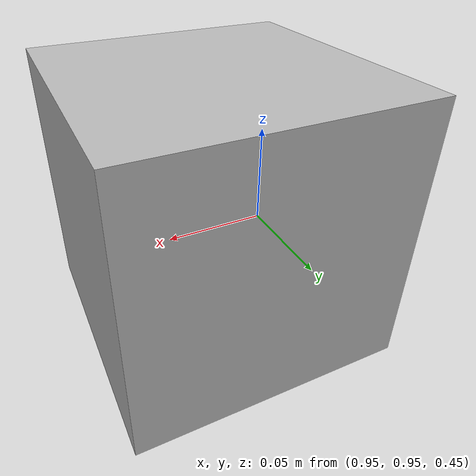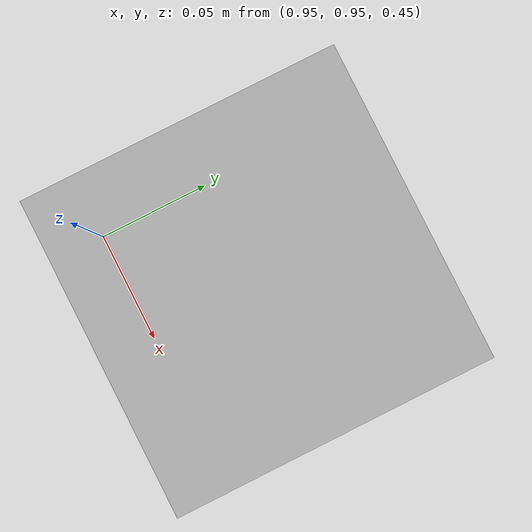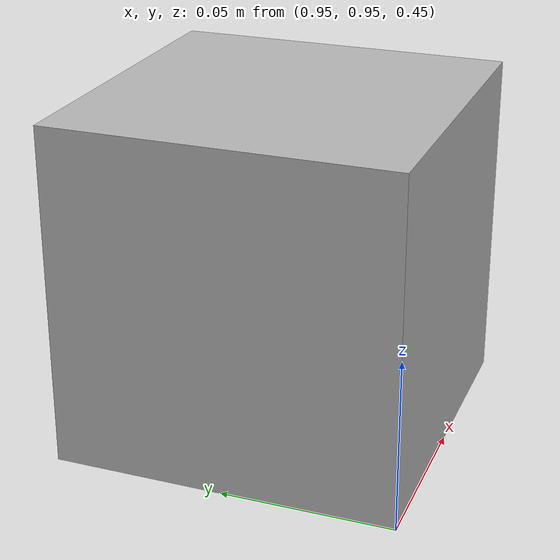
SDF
<?xml version="1.0" ?>
<sdf version="1.6">
  <world name="wide_angle_camera_sensor">
    <physics name="1ms" type="ode">
      <max_step_size>0.001</max_step_size>
      <real_time_factor>1.0</real_time_factor>
    </physics>
    <plugin
      filename="gz-sim-physics-system"
      name="gz::sim::systems::Physics">
    </plugin>
    <plugin
      filename="gz-sim-sensors-system"
      name="gz::sim::systems::Sensors">
      <render_engine>ogre2</render_engine>
    </plugin>
    <plugin
      filename="gz-sim-scene-broadcaster-system"
      name="gz::sim::systems::SceneBroadcaster">
    </plugin>

    <light type="directional" name="sun">
      <cast_shadows>true</cast_shadows>
      <pose>0 0 10 0 0 0</pose>
      <diffuse>0.8 0.8 0.8 1</diffuse>
      <specular>0.2 0.2 0.2 1</specular>
      <attenuation>
        <range>1000</range>
        <constant>0.9</constant>
        <linear>0.01</linear>
        <quadratic>0.001</quadratic>
      </attenuation>
      <direction>-0.5 0.1 -0.9</direction>
    </light>

    <model name="ground_plane">
      <static>true</static>
      <link name="link">
        <collision name="collision">
          <geometry>
            <box>
              <size>20 20 0.1</size>
            </box>
          </geometry>
        </collision>
        <visual name="visual">
          <geometry>
            <box>
              <size>20 20 0.1</size>
            </box>
          </geometry>
          <material>
            <ambient>0.8 0.8 0.8 1</ambient>
            <diffuse>0.8 0.8 0.8 1</diffuse>
            <specular>0.8 0.8 0.8 1</specular>
          </material>
        </visual>
      </link>
    </model>

  <model name="wide_angle_camera">
      <static>true</static>
      <pose>1 1 0.5 0 0.0 3.14</pose>
      <link name="link">
        <collision name="collision">
          <geometry>
            <box>
              <size>0.1 0.1 0.1</size>
            </box>
          </geometry>
        </collision>
        <visual name="visual">
          <geometry>
            <box>
              <size>0.1 0.1 0.1</size>
            </box>
          </geometry>
        </visual>
        <sensor name="wide_angle_camera" type="wideanglecamera">
          <camera>
            <horizontal_fov>3.14</horizontal_fov>
            <image>
              <width>256</width>
              <height>256</height>
            </image>
            <clip>
              <near>0.1</near>
              <far>100</far>
            </clip>
            <!-- A new section named `lens`. -->
            <lens>
              <!-- type element is mandatory -->
              <type>custom</type>
              <!-- manually defined mapping function r = c1*f*fun(theta/c2 + c3) -->
              <!-- More information here: https://en.wikipedia.org/wiki/Fisheye_lens#Mapping_function -->
              <custom_function>
                <c1>1.05</c1>
                <!-- linear scaling -->
                <c2>4</c2>
                <!-- angle scaling -->
                <f>1.0</f>
                <!-- one more scaling parameter -->
                <fun>tan</fun>
                <!-- one of sin,tan,id -->
              </custom_function>
              <!-- if it is set to `true` your horizontal FOV will remain as defined -->
              <!-- otherwise it depends on lens type and custom function, if there is one -->
              <scale_to_hfov>true</scale_to_hfov>
              <!-- clip everything that is outside of this angle -->
              <cutoff_angle>3.1415</cutoff_angle>
              <!-- resolution of the cubemap texture, the higher it is - the sharper is your image -->
              <env_texture_size>512</env_texture_size>
            </lens>
          </camera>
          <update_rate>10</update_rate>
          <topic>wide_angle_camera</topic>
        </sensor>
      </link>
    </model>
  </world>
</sdf>
